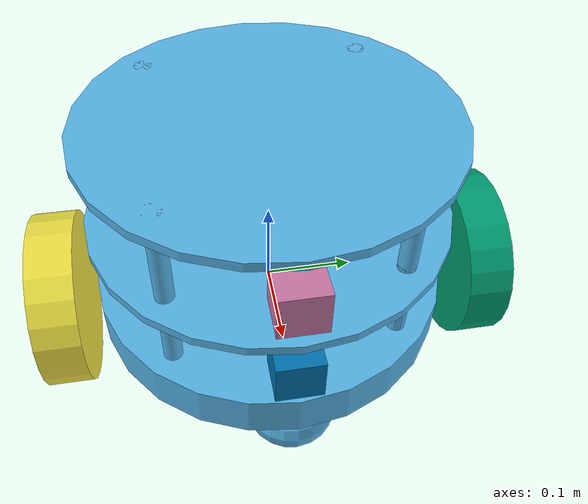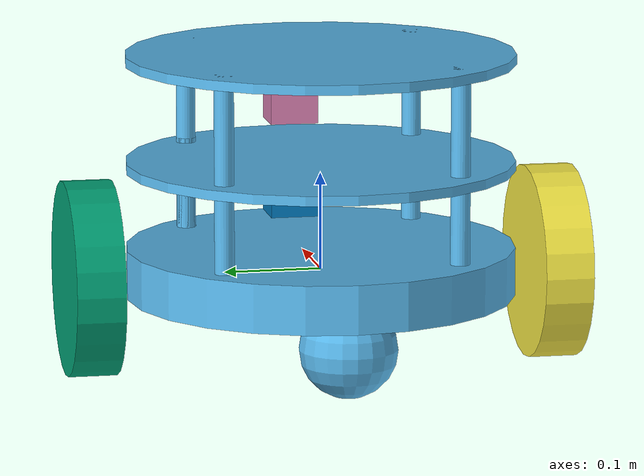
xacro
<?xml version='1.0'?>

<robot name="my_robot" xmlns:xacro="http://www.ros.org/wiki/xacro">
  <xacro:include filename="$(find my_robot)/urdf/my_robot.gazebo" />
  <link name="robot_footprint"></link>

  <joint name="robot_footprint_joint" type="fixed">
    <origin xyz="0 0 0" rpy="0 0 0" />
    <parent link="robot_footprint"/>
    <child link="chassis" />
  </joint>

  <joint type="continuous" name="left_wheel_hinge">
    <origin xyz="0 0.24 0" rpy="0 0 0"/>
    <child link="left_wheel"/>
    <parent link="chassis"/>
    <axis xyz="0 1 0" rpy="0 0 0"/>
    <limit effort="10000" velocity="1000"/>
    <dynamics damping="1.0" friction="1.0"/>
  </joint>

  <joint type="continuous" name="right_wheel_hinge">
    <origin xyz="0 -0.24 0" rpy="0 0 0"/>
    <child link="right_wheel"/>
    <parent link="chassis"/>
    <axis xyz="0 1 0" rpy="0 0 0"/>
    <limit effort="10000" velocity="1000"/>
    <dynamics damping="1.0" friction="1.0"/>
  </joint>

  <joint type="fixed" name="camera">
    <origin xyz="0.17 0 .05" rpy="0 0 0"/>
    <child link="camera"/>
    <parent link="chassis"/>
    <axis xyz="0 1 0" rpy="0 0 0"/>

  </joint>
  <joint name="camera_optical_joint" type="fixed">
    <origin xyz="0 0 0" rpy="-1.5707 0 -1.5707"/>
    <parent link="camera"/>
    <child link="camera_link_optical"/>
  </joint>

  <joint type="fixed" name="hokuyo_joint">
    <origin xyz="0.17 0 .15" rpy="0 0 0"/>
    <child link="hokuyo"/>
    <parent link="chassis"/>
    <axis xyz="0 1 0" rpy="0 0 0"/>

  </joint>

  <link name='chassis'>
    <pose>0 0 0.1 0 0 0</pose>

    <inertial>
      <mass value="5.0"/>
      <origin xyz="0.0 0 0" rpy=" 0 0 0"/>
      <inertia
          ixx="0.1" ixy="0" ixz="0"
          iyy="0.1" iyz="0"
          izz="0.1"
      />
    </inertial>

    <collision name='collision'>
      <origin xyz="0 0 0" rpy=" 0 0 0"/>
      <geometry>
      <cylinder radius="0.2" length ="0.05"/>
      </geometry>
    </collision>

    <visual name='chassis_visual'>
      <origin xyz="0 0 0" rpy=" 0 0 0"/>
      <geometry>
        <cylinder radius="0.2" length ="0.05"/>
      </geometry>
    </visual>

    <collision name='rod1'>
      <origin xyz="0.12 0.12 0.125" rpy=" 0 0 0"/>
      <geometry>
      <cylinder radius="0.01" length ="0.2"/>
      </geometry>
    </collision>

    <visual name='rod1'>
      <origin xyz="0.12 0.12 0.125" rpy=" 0 0 0"/>
      <geometry>
        <cylinder radius="0.01" length ="0.2"/>
      </geometry>
    </visual>

    <collision name='rod2'>
      <origin xyz="-0.12 0.12 0.125" rpy=" 0 0 0"/>
      <geometry>
      <cylinder radius="0.01" length ="0.2"/>
      </geometry>
    </collision>

    <visual name='rod2'>
      <origin xyz="-0.12 0.12 0.125" rpy=" 0 0 0"/>
      <geometry>
        <cylinder radius="0.01" length ="0.2"/>
      </geometry>
    </visual>

    <collision name='rod3'>
      <origin xyz="0.12 -0.12 0.125" rpy=" 0 0 0"/>
      <geometry>
      <cylinder radius="0.01" length ="0.2"/>
      </geometry>
    </collision>

    <visual name='rod3'>
      <origin xyz="0.12 -0.12 0.125" rpy=" 0 0 0"/>
      <geometry>
        <cylinder radius="0.01" length ="0.2"/>
      </geometry>
    </visual>

    <collision name='rod4'>
      <origin xyz="-0.12 -0.12 0.125" rpy=" 0 0 0"/>
      <geometry>
      <cylinder radius="0.01" length ="0.2"/>
      </geometry>
    </collision>

    <visual name='rod4'>
      <origin xyz="-0.12 -0.12 0.125" rpy=" 0 0 0"/>
      <geometry>
        <cylinder radius="0.01" length ="0.2"/>
      </geometry>
    </visual>

    <collision name='second_layer_collision'>
      <origin xyz="0 0 0.11" rpy=" 0 0 0"/>
      <geometry>
      <cylinder radius="0.2" length ="0.01"/>
      </geometry>
    </collision>

    <visual name='second_layer_visual'>
      <origin xyz="0 0 0.11" rpy=" 0 0 0"/>
      <geometry>
        <cylinder radius="0.2" length ="0.01"/>
      </geometry>
    </visual>

    <collision name='top_layer_collision'>
      <origin xyz="0 0 0.21" rpy=" 0 0 0"/>
      <geometry>
      <cylinder radius="0.2" length ="0.01"/>
      </geometry>
    </collision>

    <visual name='top_layer_visual'>
      <origin xyz="0 0 0.22" rpy=" 0 0 0"/>
      <geometry>
        <cylinder radius="0.2" length ="0.01"/>
      </geometry>
    </visual>

    <collision name='back_caster_collision'>
      <origin xyz="-0.15 0 -0.05" rpy=" 0 0 0"/>
      <geometry>
        <sphere radius="0.0499"/>
      </geometry>
    </collision><collision name='rod1'>
      <origin xyz="0.12 0.12 0.07" rpy=" 0 0 0"/>
      <geometry>
      <cylinder radius="0.01" length ="0.1"/>
      </geometry>
    </collision>

    <visual name='rod1'>
      <origin xyz="0.12 0.12 0.07" rpy=" 0 0 0"/>
      <geometry>
        <cylinder radius="0.01" length ="0.1"/>
      </geometry>
    </visual>

    <visual name='back_caster_visual'>
      <origin xyz="-0.15 0 -0.05" rpy=" 0 0 0"/>
      <geometry>
        <sphere radius="0.05"/>
      </geometry>
    </visual>

    <collision name='front_caster_collision'>
      <origin xyz="0.15 0 -0.05" rpy=" 0 0 0"/>
      <geometry>
        <sphere radius="0.0499"/>
      </geometry>
    </collision>

    <visual name='front_caster_visual'>
      <origin xyz="0.15 0 -0.05" rpy=" 0 0 0"/>
      <geometry>
        <sphere radius="0.05"/>
      </geometry>
    </visual>

  </link>

  <link name='left_wheel'>

    <inertial>
      <mass value="1.0"/>
      <origin xyz="0 0 0" rpy=" 0 1.5707 1.5707"/>
      <inertia
          ixx="0.1" ixy="0" ixz="0"
          iyy="0.1" iyz="0"
          izz="0.1"
      />
    </inertial>

    <visual name='left_wheel_visual'>
      <origin xyz="0 0 0" rpy=" 0 1.5707 1.5707"/>
      <geometry>
        <cylinder radius="0.1" length ="0.05"/>
      </geometry>
    </visual>

    <collision name='left_wheel_collisoin'>
      <origin xyz="0 0 0" rpy=" 0 1.5707 1.5707"/>
      <geometry>
        <cylinder radius="0.1" length ="0.05"/>
      </geometry>
    </collision>
  </link>

  <link name='right_wheel'>

    <inertial>
      <mass value="1.0"/>
      <origin xyz="0 0 0" rpy=" 0 1.5707 1.5707"/>
      <inertia
          ixx="0.1" ixy="0" ixz="0"
          iyy="0.1" iyz="0"
          izz="0.1"
      />
    </inertial>

    <visual name='right_wheel_visual'>
      <origin xyz="0 0 0" rpy=" 0 1.5707 1.5707"/>
      <geometry>
        <cylinder radius="0.1" length ="0.05"/>
      </geometry>
    </visual>

    <collision name='right_wheel_collisoin'>
      <origin xyz="0 0 0" rpy=" 0 1.5707 1.5707"/>
      <geometry>
        <cylinder radius="0.1" length ="0.05"/>
      </geometry>
    </collision>
  </link>
  <link name='camera'>

    <inertial>
      <mass value="0.1"/>
      <origin xyz="0 0 0" rpy=" 0 0 0"/>
      <inertia
          ixx="1e-6" ixy="0" ixz="0"
          iyy="1e-6" iyz="0"
          izz="1e-6"
      />
    </inertial>

    <visual name='camara_visual'>
      <origin xyz="0 0 0" rpy=" 0 0 0"/>
      <geometry>
        <box size="0.05 0.05 0.05"/>
      </geometry>
    </visual>

    <collision name='camara_collisoin'>
      <origin xyz="0 0 0" rpy=" 0 0 0"/>
      <geometry>
          <box size="0.05 0.05 0.05"/>
      </geometry>
    </collision>
  </link>
  <link name="camera_link_optical">

  </link>
  <link name='hokuyo'>

    <inertial>
      <mass value="0.1"/>
      <origin xyz="0 0 0" rpy=" 0 0 0"/>
      <inertia
          ixx="1e-6" ixy="0" ixz="0"
          iyy="1e-6" iyz="0"
          izz="1e-6"
      />
    </inertial>

    <visual name='hokuyo_visual'>
      <origin xyz="0 0 0" rpy=" 0 0 0"/>
      <geometry>
        <box size="0.05 0.05 0.05"/>
      </geometry>
    </visual>

    <collision name='hokuyo_collisoin'>
      <origin xyz="0 0 0" rpy=" 0 0 0"/>
      <geometry>
          <box size="0.1 0.1 0.1"/>
      </geometry>
    </collision>
  </link>

</robot>
